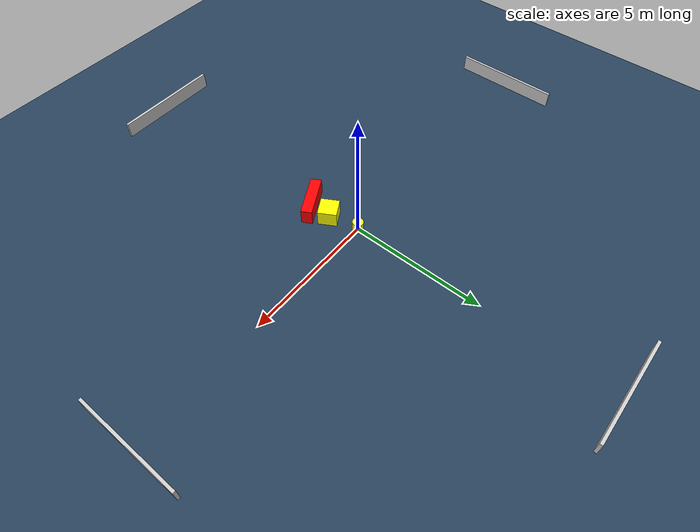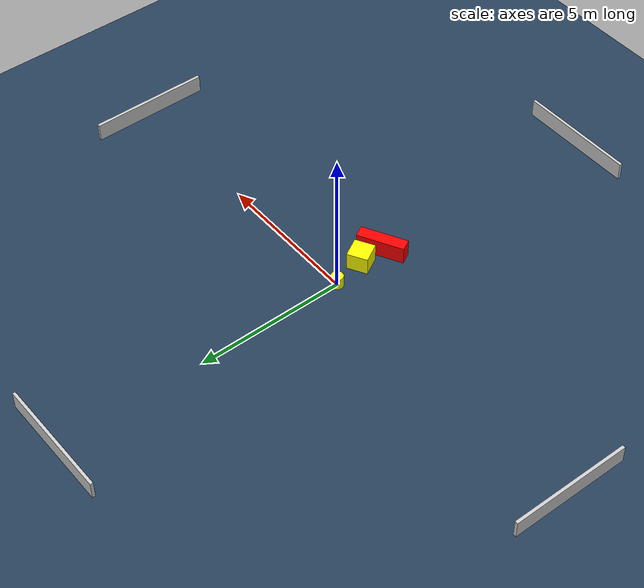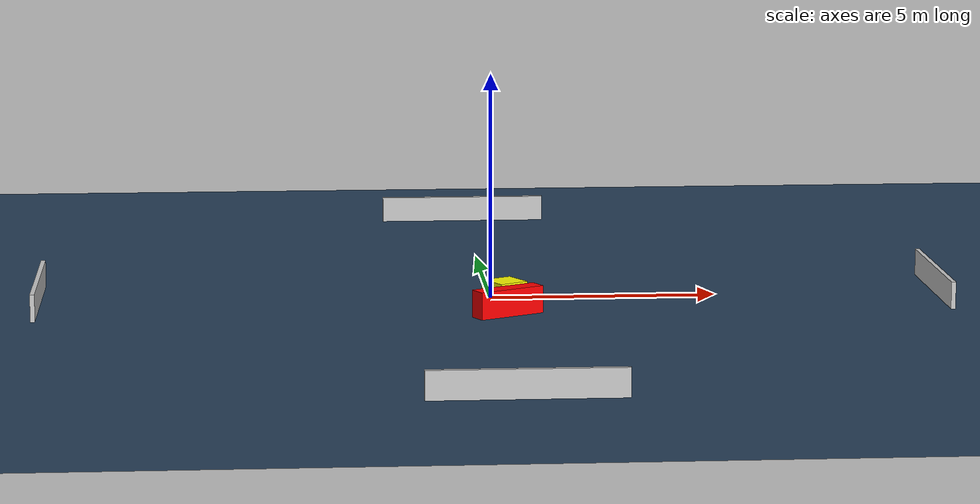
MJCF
<?xml version="1.0" ?>
<mujoco model="generated_environment">
  <option timestep="0.01" integrator="RK4" cone="elliptic"/>
  <default>
    <geom density="1"/>
  </default>
  <asset>
    <texture builtin="gradient" height="3072" name="skybox" rgb1="0.3 0.5 0.7" rgb2="0 0 0" type="skybox" width="512"/>
    <texture builtin="checker" height="300" name="groundplane" rgb1="0.2 0.3 0.4" rgb2="0.1 0.2 0.3" type="2d" width="300"/>
    <material name="groundplane" reflectance="0.2" texrepeat="5 5" texture="groundplane"/>
  </asset>
  <worldbody>
    <light dir="0 0 -1" directional="true" pos="0 0 1.5"/>
    <geom condim="3" friction="0.5 0.005 0.001" material="groundplane" name="floor" pos="0 0 0" size="0 0 0.05" type="plane"/>
    <body name="walls">
      <geom name="wall_1" condim="4" pos="-10.0 0.0 0.3" rgba="0.800000011920929 0.800000011920929 0.800000011920929 1.0" size="0.05 2.0 0.3" type="box"/>
      <geom name="wall_2" condim="4" pos="10.0 0.0 0.3" rgba="0.800000011920929 0.800000011920929 0.800000011920929 1.0" size="0.05 2.0 0.3" type="box"/>
      <geom name="wall_3" condim="4" pos="0.0 -10.0 0.3" rgba="0.800000011920929 0.800000011920929 0.800000011920929 1.0" size="2.0 0.05 0.3" type="box"/>
      <geom name="wall_4" condim="4" pos="0.0 10.0 0.3" rgba="0.800000011920929 0.800000011920929 0.800000011920929 1.0" size="2.0 0.05 0.3" type="box"/>
    </body>
    <body name="robot">
      <joint name="joint_x" type="slide" pos="0 0 0" axis="1 0 0"/>
      <joint name="joint_y" type="slide" pos="0 0 0" axis="0 1 0"/>
      <geom name="robot" type="cylinder" pos="0.0 0.0 0.2" size="0.2 0.2 0.0" mass="5.0" friction="1.0 0.005 0.0001" condim="4" rgba="1.0 1.0 0.0 1.0"/>
    </body>
    <body name="obstacle_1_movable">
      <geom name="obstacle_1_movable" condim="4" pos="0.24308656295599512 -1.123227580927954 0.3" euler="0 0 119.48473548209019" friction="0.0 0.005 0.001" rgba="1.0 1.0 0.0 1.0" size="0.3413001961596074 0.3404352026313027 0.3" type="box" mass="0.1"/>
      <joint type="free"/>
    </body>
    <body name="obstacle_2_static">
      <geom name="obstacle_2_static" condim="4" pos="0.22818067242931542 -1.9480144560004513 0.3" euler="0 0 118.15454733143265" friction="0.0 0.005 0.001" rgba="1.0 0.0 0.0 1.0" size="0.2012938525236854 0.7827424504093625 0.3" type="box"/>
    </body>
  </worldbody>
  <actuator>
    <motor name="actuator_x" joint="joint_x" gear="1" ctrlrange="-1 1"/>
    <motor name="actuator_y" joint="joint_y" gear="1" ctrlrange="-1 1"/>
  </actuator>
</mujoco>
